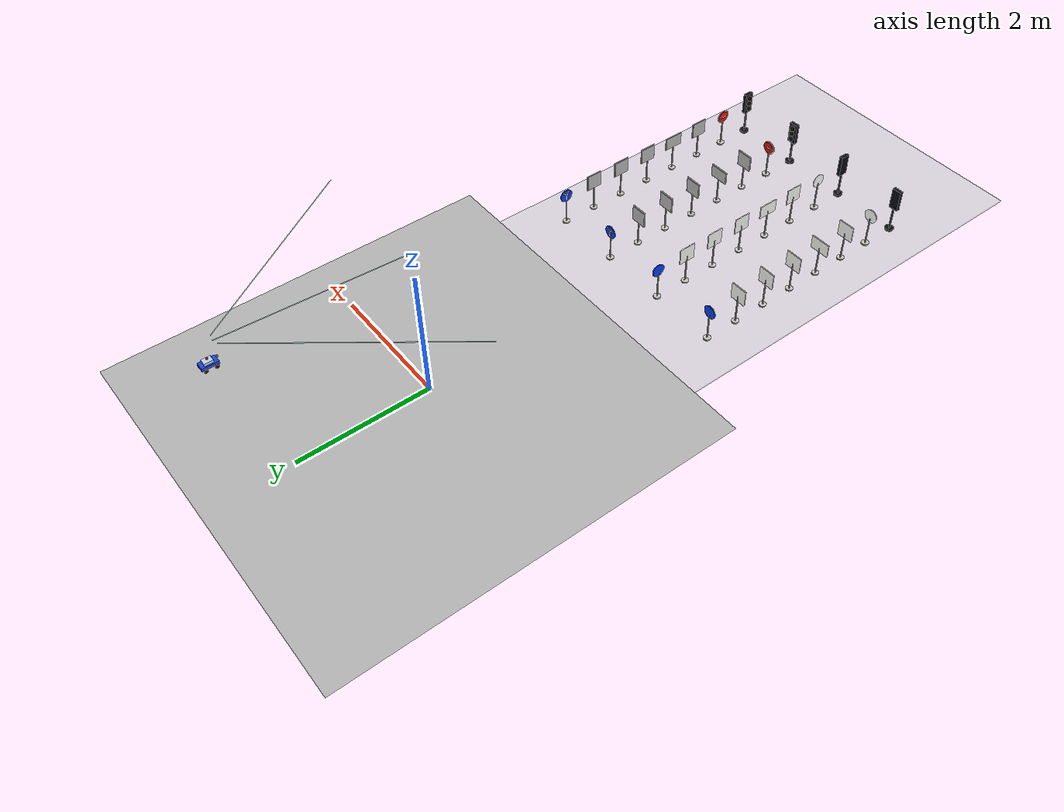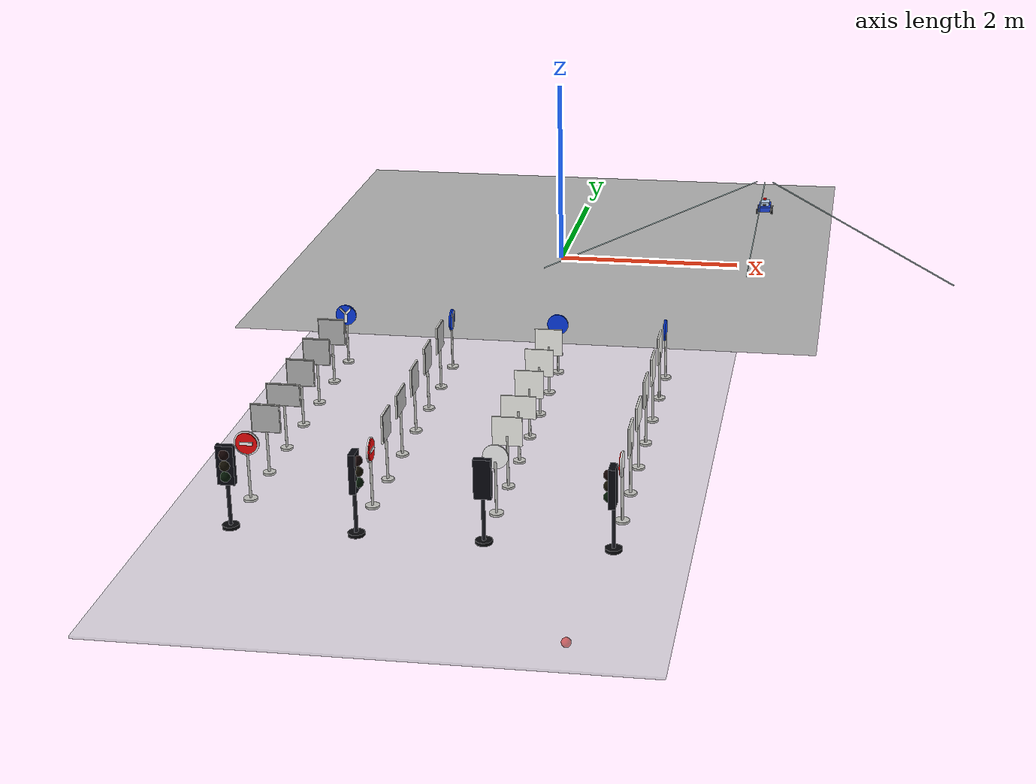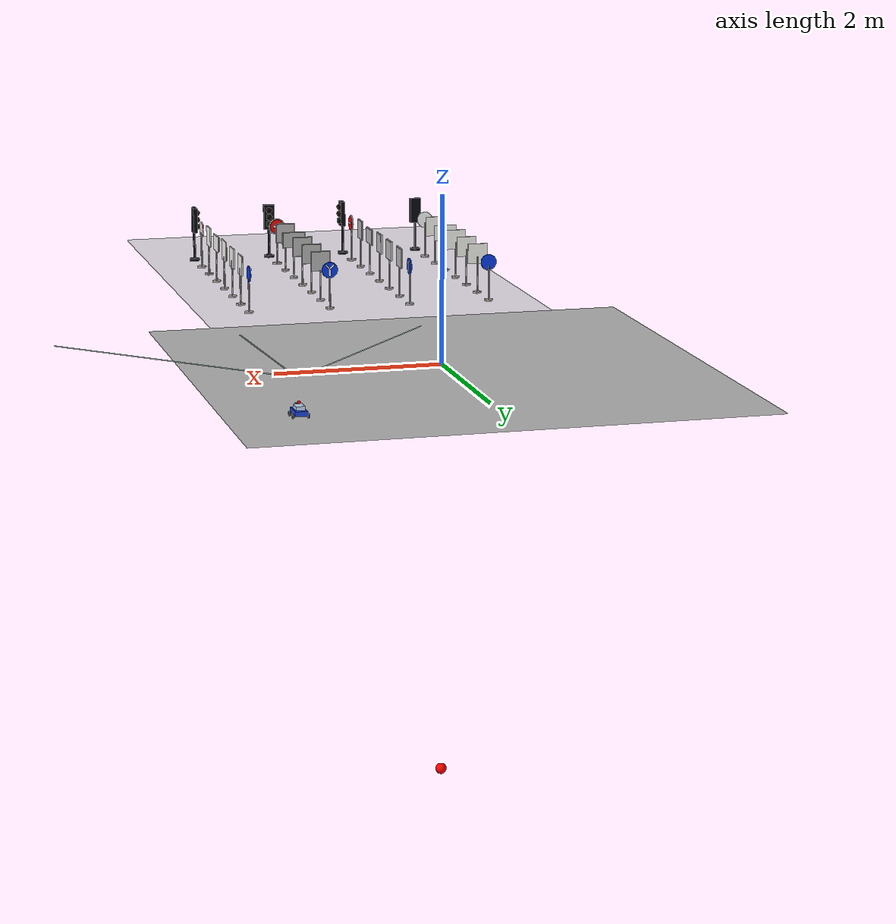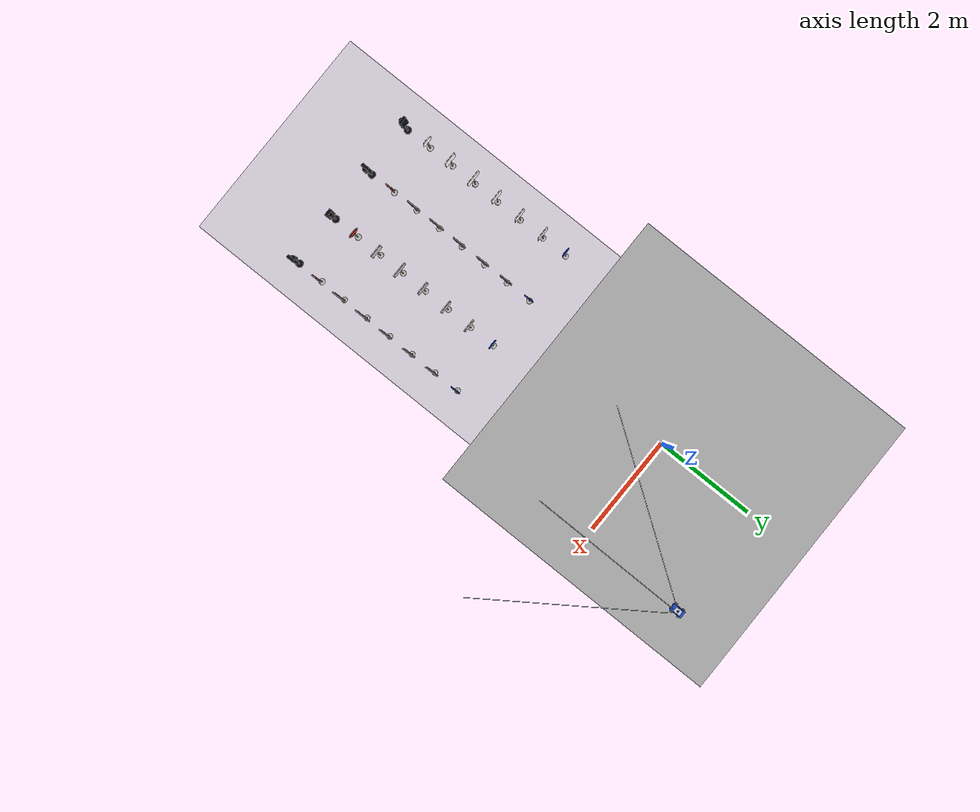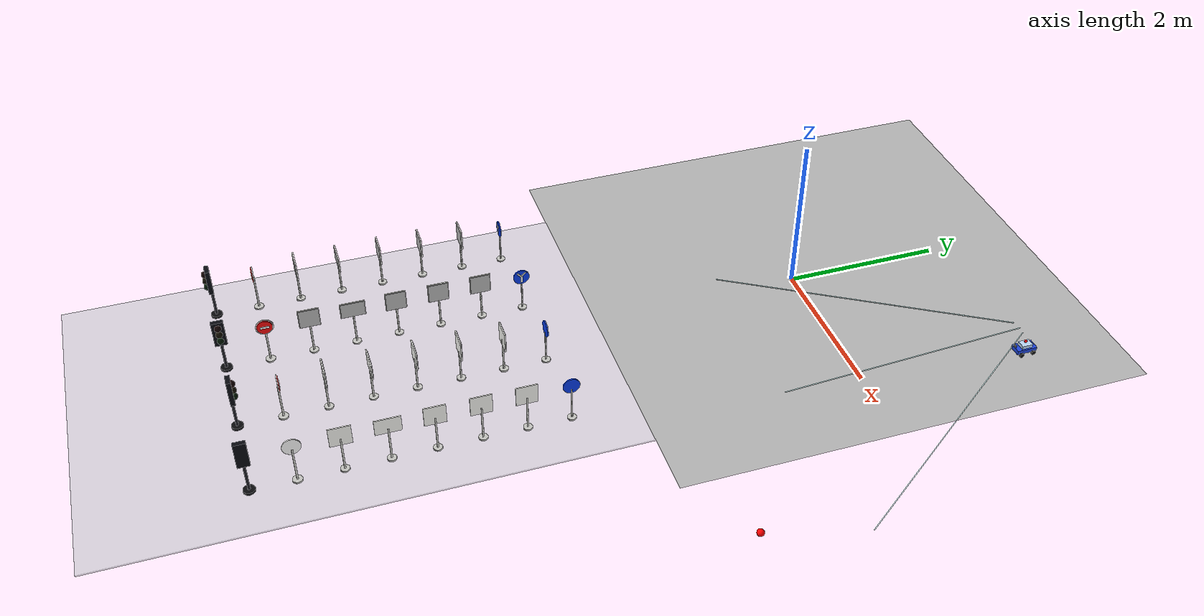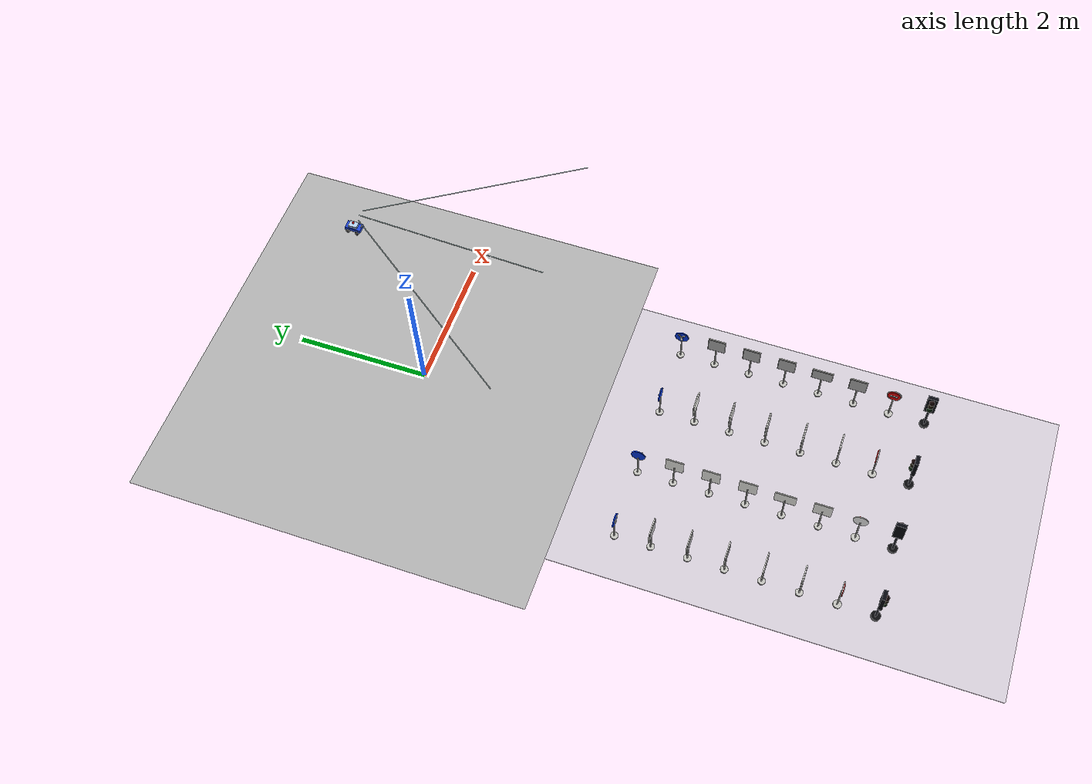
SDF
<sdf version="1.7">
 <world name="autonomous_map_3d_world">
  <model name="autonomous_map_3d_mirror_x">
   <static>1</static>
   <link name="map_link">
    <visual name="textured_map_visual">
     <geometry>
      <mesh>
       <uri>file:///home/quocbao/my_robot_vision_full_project/my_robot_vision/models/autonomous_map_3d_mirror_x/meshes/autonomous_map_3d_mirror_x.dae</uri>
      </mesh>
     </geometry>
    </visual>
    <collision name="floor_collision">
     <pose>0 0 -0.01 0 -0 0</pose>
     <geometry><box><size>6 6 0.02</size></box></geometry>
    </collision>
   </link>
   <pose>0 0.3 0 0 -0 3.141593</pose>
  </model>
  <model name="sign_palette_floor_outside_map">
   <static>1</static>
   <link name="palette_floor_link">
    <visual name="palette_floor_visual">
     <geometry><box><size>4.400000 6.410000 0.020000</size></box></geometry>
     <material><ambient>0.78 0.80 0.82 0.55</ambient><diffuse>0.78 0.80 0.82 0.55</diffuse></material>
    </visual>
    <collision name="palette_floor_collision">
     <geometry><box><size>4.400000 6.410000 0.020000</size></box></geometry>
    </collision>
   </link>
   <pose>0.000000 -5.880000 -0.020000 0.000000 0.000000 0.000000</pose>
  </model>
  <include>
   <name>palette_arrow_00_yaw_000</name>
   <uri>model://road_sign_arrow</uri>
   <pose>-1.575000 -3.500000 0.000000 0.000000 -0.000000 0.000000</pose>
  </include>
  <include>
   <name>palette_arrow_01_yaw_090</name>
   <uri>model://road_sign_arrow</uri>
   <pose>-0.525000 -3.500000 0.000000 0.000000 -0.000000 1.570796</pose>
  </include>
  <include>
   <name>palette_arrow_02_yaw_180</name>
   <uri>model://road_sign_arrow</uri>
   <pose>0.525000 -3.500000 0.000000 0.000000 -0.000000 3.141593</pose>
  </include>
  <include>
   <name>palette_arrow_03_yaw_270</name>
   <uri>model://road_sign_arrow</uri>
   <pose>1.575000 -3.500000 0.000000 0.000000 -0.000000 -1.570796</pose>
  </include>
  <include>
   <name>palette_go_straight_00_yaw_000</name>
   <uri>model://road_sign_go_straight</uri>
   <pose>-1.575000 -4.030000 0.000000 0.000000 -0.000000 0.000000</pose>
  </include>
  <include>
   <name>palette_go_straight_01_yaw_090</name>
   <uri>model://road_sign_go_straight</uri>
   <pose>-0.525000 -4.030000 0.000000 0.000000 -0.000000 1.570796</pose>
  </include>
  <include>
   <name>palette_go_straight_02_yaw_180</name>
   <uri>model://road_sign_go_straight</uri>
   <pose>0.525000 -4.030000 0.000000 0.000000 -0.000000 3.141593</pose>
  </include>
  <include>
   <name>palette_go_straight_03_yaw_270</name>
   <uri>model://road_sign_go_straight</uri>
   <pose>1.575000 -4.030000 0.000000 0.000000 -0.000000 -1.570796</pose>
  </include>
  <include>
   <name>palette_turn_left_00_yaw_000</name>
   <uri>model://road_sign_turn_left</uri>
   <pose>-1.575000 -4.560000 0.000000 0.000000 -0.000000 0.000000</pose>
  </include>
  <include>
   <name>palette_turn_left_01_yaw_090</name>
   <uri>model://road_sign_turn_left</uri>
   <pose>-0.525000 -4.560000 0.000000 0.000000 -0.000000 1.570796</pose>
  </include>
  <include>
   <name>palette_turn_left_02_yaw_180</name>
   <uri>model://road_sign_turn_left</uri>
   <pose>0.525000 -4.560000 0.000000 0.000000 -0.000000 3.141593</pose>
  </include>
  <include>
   <name>palette_turn_left_03_yaw_270</name>
   <uri>model://road_sign_turn_left</uri>
   <pose>1.575000 -4.560000 0.000000 0.000000 -0.000000 -1.570796</pose>
  </include>
  <include>
   <name>palette_turn_right_00_yaw_000</name>
   <uri>model://road_sign_turn_right</uri>
   <pose>-1.575000 -5.090000 0.000000 0.000000 -0.000000 0.000000</pose>
  </include>
  <include>
   <name>palette_turn_right_01_yaw_090</name>
   <uri>model://road_sign_turn_right</uri>
   <pose>-0.525000 -5.090000 0.000000 0.000000 -0.000000 1.570796</pose>
  </include>
  <include>
   <name>palette_turn_right_02_yaw_180</name>
   <uri>model://road_sign_turn_right</uri>
   <pose>0.525000 -5.090000 0.000000 0.000000 -0.000000 3.141593</pose>
  </include>
  <include>
   <name>palette_turn_right_03_yaw_270</name>
   <uri>model://road_sign_turn_right</uri>
   <pose>1.575000 -5.090000 0.000000 0.000000 -0.000000 -1.570796</pose>
  </include>
  <include>
   <name>palette_parking_00_yaw_000</name>
   <uri>model://road_sign_parking</uri>
   <pose>-1.575000 -5.620000 0.000000 0.000000 -0.000000 0.000000</pose>
  </include>
  <include>
   <name>palette_parking_01_yaw_090</name>
   <uri>model://road_sign_parking</uri>
   <pose>-0.525000 -5.620000 0.000000 0.000000 -0.000000 1.570796</pose>
  </include>
  <include>
   <name>palette_parking_02_yaw_180</name>
   <uri>model://road_sign_parking</uri>
   <pose>0.525000 -5.620000 0.000000 0.000000 -0.000000 3.141593</pose>
  </include>
  <include>
   <name>palette_parking_03_yaw_270</name>
   <uri>model://road_sign_parking</uri>
   <pose>1.575000 -5.620000 0.000000 0.000000 -0.000000 -1.570796</pose>
  </include>
  <include>
   <name>palette_speed_limit_00_yaw_000</name>
   <uri>model://road_sign_speed_limit</uri>
   <pose>-1.575000 -6.150000 0.000000 0.000000 -0.000000 0.000000</pose>
  </include>
  <include>
   <name>palette_speed_limit_01_yaw_090</name>
   <uri>model://road_sign_speed_limit</uri>
   <pose>-0.525000 -6.150000 0.000000 0.000000 -0.000000 1.570796</pose>
  </include>
  <include>
   <name>palette_speed_limit_02_yaw_180</name>
   <uri>model://road_sign_speed_limit</uri>
   <pose>0.525000 -6.150000 0.000000 0.000000 -0.000000 3.141593</pose>
  </include>
  <include>
   <name>palette_speed_limit_03_yaw_270</name>
   <uri>model://road_sign_speed_limit</uri>
   <pose>1.575000 -6.150000 0.000000 0.000000 -0.000000 -1.570796</pose>
  </include>
  <include>
   <name>palette_stop_00_yaw_000</name>
   <uri>model://road_sign_stop</uri>
   <pose>-1.575000 -6.680000 0.000000 0.000000 -0.000000 0.000000</pose>
  </include>
  <include>
   <name>palette_stop_01_yaw_090</name>
   <uri>model://road_sign_stop</uri>
   <pose>-0.525000 -6.680000 0.000000 0.000000 -0.000000 1.570796</pose>
  </include>
  <include>
   <name>palette_stop_02_yaw_180</name>
   <uri>model://road_sign_stop</uri>
   <pose>0.525000 -6.680000 0.000000 0.000000 -0.000000 3.141593</pose>
  </include>
  <include>
   <name>palette_stop_03_yaw_270</name>
   <uri>model://road_sign_stop</uri>
   <pose>1.575000 -6.680000 0.000000 0.000000 -0.000000 -1.570796</pose>
  </include>
  <include>
   <name>palette_traffic_light_00_yaw_000</name>
   <uri>model://traffic_light_toy</uri>
   <pose>-1.575000 -7.210000 0.000000 0.000000 -0.000000 0.000000</pose>
  </include>
  <include>
   <name>palette_traffic_light_01_yaw_090</name>
   <uri>model://traffic_light_toy</uri>
   <pose>-0.525000 -7.210000 0.000000 0.000000 -0.000000 1.570796</pose>
  </include>
  <include>
   <name>palette_traffic_light_02_yaw_180</name>
   <uri>model://traffic_light_toy</uri>
   <pose>0.525000 -7.210000 0.000000 0.000000 -0.000000 3.141593</pose>
  </include>
  <include>
   <name>palette_traffic_light_03_yaw_270</name>
   <uri>model://traffic_light_toy</uri>
   <pose>1.575000 -7.210000 0.000000 0.000000 -0.000000 -1.570796</pose>
  </include>
  <include>
   <name>palette_traffic_light_00_yaw_000_red_active_lamp</name>
   <uri>model://traffic_light_active_lamp_red</uri>
   <pose>0.000000 0.000000 -5.000000 0.000000 -0.000000 0.000000</pose>
  </include>
  <include>
   <name>palette_traffic_light_01_yaw_090_red_active_lamp</name>
   <uri>model://traffic_light_active_lamp_red</uri>
   <pose>0.000000 0.000000 -5.000000 0.000000 -0.000000 0.000000</pose>
  </include>
  <include>
   <name>palette_traffic_light_02_yaw_180_red_active_lamp</name>
   <uri>model://traffic_light_active_lamp_red</uri>
   <pose>0.000000 0.000000 -5.000000 0.000000 -0.000000 0.000000</pose>
  </include>
  <include>
   <name>palette_traffic_light_03_yaw_270_red_active_lamp</name>
   <uri>model://traffic_light_active_lamp_red</uri>
   <pose>0.000000 0.000000 -5.000000 0.000000 -0.000000 0.000000</pose>
  </include>
  <include>
   <name>palette_traffic_light_00_yaw_000_yellow_active_lamp</name>
   <uri>model://traffic_light_active_lamp_yellow</uri>
   <pose>0.000000 0.000000 -5.000000 0.000000 -0.000000 0.000000</pose>
  </include>
  <include>
   <name>palette_traffic_light_01_yaw_090_yellow_active_lamp</name>
   <uri>model://traffic_light_active_lamp_yellow</uri>
   <pose>0.000000 0.000000 -5.000000 0.000000 -0.000000 0.000000</pose>
  </include>
  <include>
   <name>palette_traffic_light_02_yaw_180_yellow_active_lamp</name>
   <uri>model://traffic_light_active_lamp_yellow</uri>
   <pose>0.000000 0.000000 -5.000000 0.000000 -0.000000 0.000000</pose>
  </include>
  <include>
   <name>palette_traffic_light_03_yaw_270_yellow_active_lamp</name>
   <uri>model://traffic_light_active_lamp_yellow</uri>
   <pose>0.000000 0.000000 -5.000000 0.000000 -0.000000 0.000000</pose>
  </include>
  <include>
   <name>palette_traffic_light_00_yaw_000_green_active_lamp</name>
   <uri>model://traffic_light_active_lamp_green</uri>
   <pose>0.000000 0.000000 -5.000000 0.000000 -0.000000 0.000000</pose>
  </include>
  <include>
   <name>palette_traffic_light_01_yaw_090_green_active_lamp</name>
   <uri>model://traffic_light_active_lamp_green</uri>
   <pose>0.000000 0.000000 -5.000000 0.000000 -0.000000 0.000000</pose>
  </include>
  <include>
   <name>palette_traffic_light_02_yaw_180_green_active_lamp</name>
   <uri>model://traffic_light_active_lamp_green</uri>
   <pose>0.000000 0.000000 -5.000000 0.000000 -0.000000 0.000000</pose>
  </include>
  <include>
   <name>palette_traffic_light_03_yaw_270_green_active_lamp</name>
   <uri>model://traffic_light_active_lamp_green</uri>
   <pose>0.000000 0.000000 -5.000000 0.000000 -0.000000 0.000000</pose>
  </include>
  <model name="track_preview_car">
   <static>0</static>
   <allow_auto_disable>0</allow_auto_disable>
   <link name="body">
    <inertial>
     <mass>1</mass>
     <inertia><ixx>0.01</ixx><iyy>0.01</iyy><izz>0.01</izz><ixy>0</ixy><ixz>0</ixz><iyz>0</iyz></inertia>
    </inertial>
    <visual name="chassis_visual">
     <pose>0 0 0.065 0 -0 0</pose>
     <geometry><box><size>0.26 0.14 0.055</size></box></geometry>
     <material>
      <ambient>0.08 0.2 0.7 1</ambient>
      <diffuse>0.12 0.28 0.88 1</diffuse>
      <specular>0.1 0.1 0.1 1</specular>
     </material>
    </visual>
    <visual name="roof_visual">
     <pose>-0.005 0 0.115 0 -0 0</pose>
     <geometry><box><size>0.14 0.105 0.045</size></box></geometry>
     <material>
      <ambient>0.65 0.78 0.95 0.92</ambient>
      <diffuse>0.75 0.86 0.98 0.92</diffuse>
      <specular>0.1 0.1 0.1 1</specular>
     </material>
    </visual>
    <visual name="front_marker_visual">
     <pose>0.105 0 0.083 0 -0 0</pose>
     <geometry><box><size>0.025 0.075 0.018</size></box></geometry>
     <material>
      <ambient>1 0.85 0.2 1</ambient>
      <diffuse>1 0.88 0.25 1</diffuse>
      <specular>0.05 0.05 0.05 1</specular>
     </material>
    </visual>
    <visual name="camera_lens_visual">
     <pose>0.138 0 0.126 0 -0 0</pose>
     <geometry><box><size>0.016 0.04 0.022</size></box></geometry>
     <material>
      <ambient>0.02 0.02 0.025 1</ambient>
      <diffuse>0.04 0.04 0.05 1</diffuse>
      <specular>0.05 0.05 0.05 1</specular>
     </material>
    </visual>
    <visual name="camera_view_left_ray_visual">
     <pose>1.67 1.15 0.335 -0 0.0505 0.6109</pose>
     <geometry><box><size>3.68 0.008 0.008</size></box></geometry>
     <material>
      <ambient>0.85 1 1 0.82</ambient>
      <diffuse>0.85 1 1 0.82</diffuse>
      <emissive>0.2 0.55 0.75 1</emissive>
     </material>
    </visual>
    <visual name="camera_view_center_ray_visual">
     <pose>1.67 0 0.335 0 0.0555 0</pose>
     <geometry><box><size>3.0647 0.008 0.008</size></box></geometry>
     <material>
      <ambient>0.85 1 1 0.82</ambient>
      <diffuse>0.85 1 1 0.82</diffuse>
      <emissive>0.2 0.55 0.75 1</emissive>
     </material>
    </visual>
    <visual name="camera_view_right_ray_visual">
     <pose>1.67 -1.15 0.335 0 0.0505 -0.6109</pose>
     <geometry><box><size>3.68 0.008 0.008</size></box></geometry>
     <material>
      <ambient>0.85 1 1 0.82</ambient>
      <diffuse>0.85 1 1 0.82</diffuse>
      <emissive>0.2 0.55 0.75 1</emissive>
     </material>
    </visual>
    <visual name="debug_origin_marker_visual">
     <pose>0 0 0.165 0 -0 0</pose>
     <geometry><sphere><radius>0.018</radius></sphere></geometry>
     <material>
      <ambient>1 0.02 0.02 1</ambient>
      <diffuse>1 0.04 0.04 1</diffuse>
      <specular>0.08 0.08 0.08 1</specular>
     </material>
    </visual>
    <visual name="debug_ground_origin_visual">
     <pose>0 0 -0.017 0 -0 0</pose>
     <geometry><cylinder><radius>0.018</radius><length>0.004</length></cylinder></geometry>
     <material>
      <ambient>1 0.02 0.02 1</ambient>
      <diffuse>1 0.04 0.04 1</diffuse>
      <specular>0.08 0.08 0.08 1</specular>
     </material>
    </visual>
    <visual name="debug_ground_footprint_front_visual">
     <pose>0.165 0 -0.017 0 -0 0</pose>
     <geometry><box><size>0.008 0.238 0.004</size></box></geometry>
     <material>
      <ambient>0 0.7 1 1</ambient>
      <diffuse>0.05 0.86 1 1</diffuse>
      <specular>0.02 0.02 0.02 1</specular>
     </material>
    </visual>
    <visual name="debug_ground_footprint_rear_visual">
     <pose>-0.145 0 -0.017 0 -0 0</pose>
     <geometry><box><size>0.008 0.238 0.004</size></box></geometry>
     <material>
      <ambient>0 0.7 1 1</ambient>
      <diffuse>0.05 0.86 1 1</diffuse>
      <specular>0.02 0.02 0.02 1</specular>
     </material>
    </visual>
    <visual name="debug_ground_footprint_left_visual">
     <pose>0.01 0.115 -0.017 0 -0 0</pose>
     <geometry><box><size>0.318 0.008 0.004</size></box></geometry>
     <material>
      <ambient>0 0.7 1 1</ambient>
      <diffuse>0.05 0.86 1 1</diffuse>
      <specular>0.02 0.02 0.02 1</specular>
     </material>
    </visual>
    <visual name="debug_ground_footprint_right_visual">
     <pose>0.01 -0.115 -0.017 0 -0 0</pose>
     <geometry><box><size>0.318 0.008 0.004</size></box></geometry>
     <material>
      <ambient>0 0.7 1 1</ambient>
      <diffuse>0.05 0.86 1 1</diffuse>
      <specular>0.02 0.02 0.02 1</specular>
     </material>
    </visual>
    <visual name="rear_left_dummy_wheel_visual">
     <pose>-0.08 0.085 0.032 1.5708 -0 0</pose>
     <geometry><cylinder><radius>0.028</radius><length>0.016</length></cylinder></geometry>
     <material>
      <ambient>0.03 0.03 0.03 1</ambient>
      <diffuse>0.07 0.07 0.07 1</diffuse>
      <specular>0.02 0.02 0.02 1</specular>
     </material>
    </visual>
    <visual name="rear_right_dummy_wheel_visual">
     <pose>-0.08 -0.085 0.032 1.5708 -0 0</pose>
     <geometry><cylinder><radius>0.028</radius><length>0.016</length></cylinder></geometry>
     <material>
      <ambient>0.03 0.03 0.03 1</ambient>
      <diffuse>0.07 0.07 0.07 1</diffuse>
      <specular>0.02 0.02 0.02 1</specular>
     </material>
    </visual>
    <collision name="rear_left_caster_collision">
     <pose>-0.095 0.072 0.026 0 -0 0</pose>
     <geometry><sphere><radius>0.024</radius></sphere></geometry>
     <surface><friction><ode><mu>0.05</mu><mu2>0.05</mu2></ode></friction></surface>
    </collision>
    <collision name="rear_right_caster_collision">
     <pose>-0.095 -0.072 0.026 0 -0 0</pose>
     <geometry><sphere><radius>0.024</radius></sphere></geometry>
     <surface><friction><ode><mu>0.05</mu><mu2>0.05</mu2></ode></friction></surface>
    </collision>
    <collision name="body_collision">
     <pose>0 0 0.065 0 -0 0</pose>
     <geometry><box><size>0.26 0.14 0.05</size></box></geometry>
    </collision>
    <sensor name="front_camera" type="camera">
     <pose>0.14 0 0.42 0 0.18 0</pose>
     <always_on>1</always_on>
     <update_rate>30</update_rate>
     <visualize>0</visualize>
     <camera>
      <horizontal_fov>2.45</horizontal_fov>
      <image><width>960</width><height>540</height><format>R8G8B8</format></image>
      <clip><near>0.02</near><far>6</far></clip>
     </camera>
     <plugin name="front_camera_controller" filename="libgazebo_ros_camera.so">
      <ros>
       <namespace>/track_preview_car</namespace>
       <remapping>image_raw:=image_raw</remapping>
       <remapping>camera_info:=camera_info</remapping>
      </ros>
      <camera_name>camera</camera_name>
      <frame_name>track_preview_car/front_camera</frame_name>
     </plugin>
    </sensor>
   </link>
   <link name="left_wheel">
    <pose>0.08 0.088 0.032 0 -0 0</pose>
    <inertial>
     <mass>0.08</mass>
     <inertia><ixx>5e-05</ixx><iyy>8e-05</iyy><izz>5e-05</izz><ixy>0</ixy><ixz>0</ixz><iyz>0</iyz></inertia>
    </inertial>
    <visual name="left_wheel_visual">
     <pose>0 0 0 1.5708 -0 0</pose>
     <geometry><cylinder><radius>0.03</radius><length>0.02</length></cylinder></geometry>
     <material>
      <ambient>0.03 0.03 0.03 1</ambient>
      <diffuse>0.07 0.07 0.07 1</diffuse>
      <specular>0.02 0.02 0.02 1</specular>
     </material>
    </visual>
    <collision name="left_wheel_collision">
     <pose>0 0 0 1.5708 -0 0</pose>
     <geometry><cylinder><radius>0.03</radius><length>0.02</length></cylinder></geometry>
     <surface><friction><ode><mu>1.2</mu><mu2>1.2</mu2></ode></friction></surface>
    </collision>
   </link>
   <link name="right_wheel">
    <pose>0.08 -0.088 0.032 0 -0 0</pose>
    <inertial>
     <mass>0.08</mass>
     <inertia><ixx>5e-05</ixx><iyy>8e-05</iyy><izz>5e-05</izz><ixy>0</ixy><ixz>0</ixz><iyz>0</iyz></inertia>
    </inertial>
    <visual name="right_wheel_visual">
     <pose>0 0 0 1.5708 -0 0</pose>
     <geometry><cylinder><radius>0.03</radius><length>0.02</length></cylinder></geometry>
     <material>
      <ambient>0.03 0.03 0.03 1</ambient>
      <diffuse>0.07 0.07 0.07 1</diffuse>
      <specular>0.02 0.02 0.02 1</specular>
     </material>
    </visual>
    <collision name="right_wheel_collision">
     <pose>0 0 0 1.5708 -0 0</pose>
     <geometry><cylinder><radius>0.03</radius><length>0.02</length></cylinder></geometry>
     <surface><friction><ode><mu>1.2</mu><mu2>1.2</mu2></ode></friction></surface>
    </collision>
   </link>
   <joint name="left_wheel_joint" type="revolute">
    <parent>body</parent>
    <child>left_wheel</child>
    <axis>
     <xyz>0 1 0</xyz>
     <limit><lower>-1e+16</lower><upper>1e+16</upper></limit>
     <dynamics><spring_reference>0</spring_reference><spring_stiffness>0</spring_stiffness></dynamics>
    </axis>
   </joint>
   <joint name="right_wheel_joint" type="revolute">
    <parent>body</parent>
    <child>right_wheel</child>
    <axis>
     <xyz>0 1 0</xyz>
     <limit><lower>-1e+16</lower><upper>1e+16</upper></limit>
     <dynamics><spring_reference>0</spring_reference><spring_stiffness>0</spring_stiffness></dynamics>
    </axis>
   </joint>
   <plugin name="track_preview_car_diff_drive" filename="libgazebo_ros_diff_drive.so">
    <ros>
     <namespace>/track_preview_car</namespace>
     <remapping>cmd_vel:=cmd_vel</remapping>
     <remapping>odom:=odom</remapping>
    </ros>
    <left_joint>left_wheel_joint</left_joint>
    <right_joint>right_wheel_joint</right_joint>
    <wheel_separation>0.176</wheel_separation>
    <wheel_diameter>0.06</wheel_diameter>
    <max_wheel_torque>2.0</max_wheel_torque>
    <max_wheel_acceleration>8.0</max_wheel_acceleration>
    <odometry_frame>odom</odometry_frame>
    <robot_base_frame>body</robot_base_frame>
    <publish_odom>1</publish_odom>
    <publish_odom_tf>0</publish_odom_tf>
    <publish_wheel_tf>0</publish_wheel_tf>
    <update_rate>50</update_rate>
   </plugin>
   <pose>2.179688 2.104687 -0.002000 0.000000 -0.000000 -1.570796</pose>
  </model>
 </world>
</sdf>
